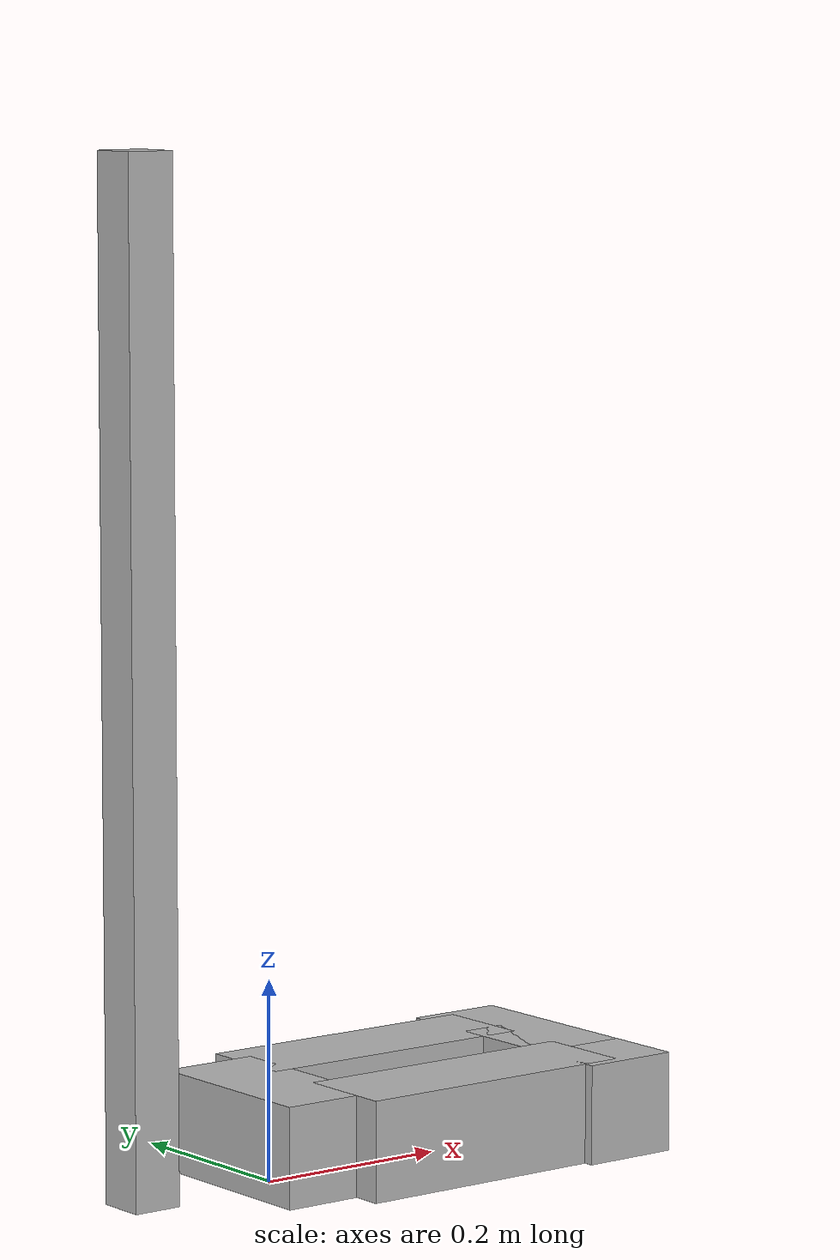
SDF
<?xml version="1.0" ?>
<sdf version="1.5">
  <model name="simple_gripper">
    <link name="riser">
      <gravity>0</gravity>
      <kinematic>0</kinematic>
      <pose>-0.15 0.0 0.5 0 0 0</pose>
      <inertial>
        <mass>10</mass>
      </inertial>
      <collision name="collision">
        <geometry>
          <box>
            <size>0.05 0.05 1.0</size>
          </box>
        </geometry>
        <surface>
          <contact>
            <ode>
              <max_vel>0.0</max_vel>
            </ode>
          </contact>
        </surface>
      </collision>
      <visual name="visual">
        <geometry>
          <box>
            <size>0.05 0.05 1.0</size>
          </box>
        </geometry>
      </visual>
    </link>
    <link name="palm">
      <gravity>0</gravity>
      <kinematic>0</kinematic>
      <pose>0.0 0.0 0.05 0 0 0</pose>
      <inertial>
        <mass>0.5</mass>
      </inertial>
      <collision name="collision">
        <geometry>
          <box>
            <size>0.1 0.2 0.1</size>
          </box>
        </geometry>
        <surface>
          <contact>
            <ode>
              <max_vel>0.0</max_vel>
            </ode>
          </contact>
        </surface>
      </collision>
      <visual name="visual">
        <geometry>
          <box>
            <size>0.1 0.2 0.1</size>
          </box>
        </geometry>
      </visual>
    </link>
    <link name="left_finger">
      <gravity>0</gravity>
      <kinematic>0</kinematic>
      <pose>0.18 0.08 0.05 0 0 1.5707</pose>
      <inertial>
        <mass>0.1</mass>
      </inertial>
      <collision name="collision">
        <geometry>
          <box>
            <size>0.1 0.3 0.1</size>
          </box>
        </geometry>
        <surface>
          <friction>
            <ode>
              <mu>0.1</mu>
              <mu2>0</mu2>
            </ode>
          </friction>
          <contact>
            <ode>
              <max_vel>0.0</max_vel>
            </ode>
          </contact>
        </surface>
      </collision>
      <visual name="visual">
        <geometry>
          <box>
            <size>0.1 0.3 0.1</size>
          </box>
        </geometry>
      </visual>
    </link>
    <link name="left_finger_tip">
      <gravity>0</gravity>
      <kinematic>0</kinematic>
      <pose>0.34 0.04 0.05 0 0 0</pose>
      <inertial>
        <mass>0.5</mass>
      </inertial>
      <collision name="collision">
        <geometry>
          <box>
            <size>0.1 0.2 0.1</size>
          </box>
        </geometry>
        <surface>
          <friction>
            <ode>
              <mu>.1</mu>
              <mu2>0</mu2>
            </ode>
          </friction>
          <contact>
            <ode>
              <max_vel>0.0</max_vel>
            </ode>
          </contact>
        </surface>
      </collision>
      <visual name="visual">
        <geometry>
          <box>
            <size>0.1 0.2 0.1</size>
          </box>
        </geometry>
      </visual>
    </link>
    <link name="right_finger">
      <gravity>0</gravity>
      <kinematic>0</kinematic>
      <pose>0.18 -0.08 0.05 0 0 1.5707</pose>
      <inertial>
        <mass>0.1</mass>
      </inertial>
      <collision name="collision">
        <geometry>
          <box>
            <size>0.1 0.3 0.1</size>
          </box>
        </geometry>
        <surface>
          <friction>
            <ode>
              <mu>0.1</mu>
              <mu2>0</mu2>
            </ode>
          </friction>
          <contact>
            <ode>
              <max_vel>0.0</max_vel>
            </ode>
          </contact>
        </surface>
      </collision>
      <visual name="visual">
        <geometry>
          <box>
            <size>0.1 0.3 0.1</size>
          </box>
        </geometry>
      </visual>
    </link>
    <link name="right_finger_tip">
      <gravity>0</gravity>
      <kinematic>0</kinematic>
      <pose>0.34 -0.04 0.05 0 0 0</pose>
      <inertial>
        <mass>0.1</mass>
      </inertial>
      <collision name="collision">
        <geometry>
          <box>
            <size>0.1 0.2 0.1</size>
          </box>
        </geometry>
        <surface>
          <friction>
            <ode>
              <mu>0.1</mu>
              <mu2>0</mu2>
            </ode>
          </friction>
          <contact>
            <ode>
              <max_vel>0.0</max_vel>
            </ode>
          </contact>
        </surface>
      </collision>
      <visual name="visual">
        <geometry>
          <box>
            <size>0.1 0.2 0.1</size>
          </box>
        </geometry>
      </visual>
    </link>
    <joint name="palm_left_finger" type="revolute">
      <pose>0 -0.15 0 0 0 0</pose>
      <child>left_finger</child>
      <parent>palm</parent>
      <axis>
        <limit>
          <lower>0</lower>
          <upper>0</upper>
        </limit>
        <xyz>0 0 1</xyz>
        <use_parent_model_frame>true</use_parent_model_frame>
      </axis>
    </joint>
    <joint name="left_finger_tip_joint" type="revolute">
      <pose>0 0.1 0 0 0 0</pose>
      <child>left_finger_tip</child>
      <parent>left_finger</parent>
      <axis>
        <limit>
          <lower>0</lower>
          <upper>0</upper>
        </limit>
        <xyz>0 0 1</xyz>
        <use_parent_model_frame>true</use_parent_model_frame>
      </axis>
    </joint>
    <joint name="palm_right_finger" type="revolute">
      <pose>0 0.15 0 0 0 0</pose>
      <child>right_finger</child>
      <parent>palm</parent>
      <axis>
        <limit>
          <lower>0</lower>
          <upper>0</upper>
        </limit>
        <xyz>0 0 1</xyz>
        <use_parent_model_frame>true</use_parent_model_frame>
      </axis>
    </joint>
    <joint name="right_finger_tip_joint" type="revolute">
      <pose>0 0.1 0 0 0 0</pose>
      <child>right_finger_tip</child>
      <parent>right_finger</parent>
      <axis>
        <limit>
          <lower>0</lower>
          <upper>0</upper>
        </limit>
        <xyz>0 0 1</xyz>
        <use_parent_model_frame>true</use_parent_model_frame>
      </axis>
    </joint>
    <joint name="palm_riser" type="prismatic">
      <child>palm</child>
      <parent>riser</parent>
      <axis>
        <dynamics>
          <damping>50.0</damping>
          <friction>5.0</friction>
        </dynamics>
        <limit>
          <lower>0</lower>
          <upper>0.9</upper>
        </limit>
        <xyz>0 0 1</xyz>
        <use_parent_model_frame>true</use_parent_model_frame>
      </axis>
    </joint>
    <gripper name="simple_gripper">
      <grasp_check>
        <detach_steps>40</detach_steps>
        <attach_steps>20</attach_steps>
        <min_contact_count>2</min_contact_count>
      </grasp_check>
      <gripper_link>right_finger</gripper_link>
      <gripper_link>right_finger_tip</gripper_link>
      <gripper_link>left_finger</gripper_link>
      <gripper_link>left_finger_tip</gripper_link>
      <palm_link>palm</palm_link>
    </gripper>
  </model>
</sdf>
